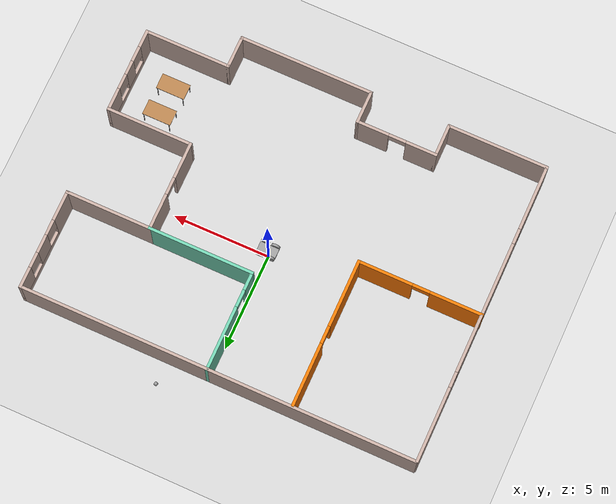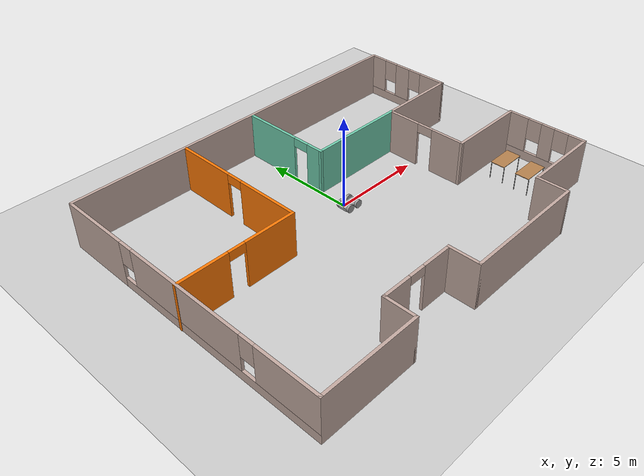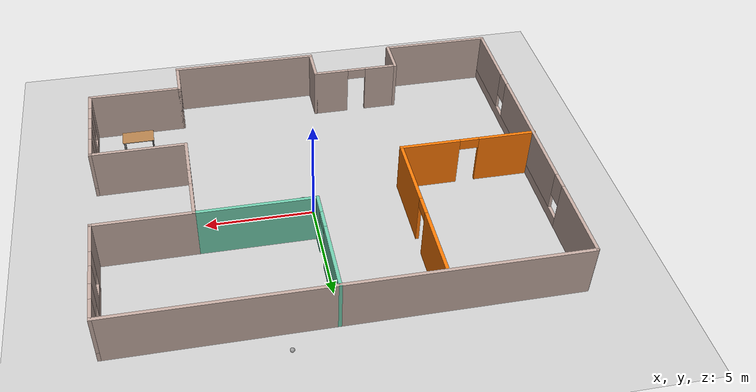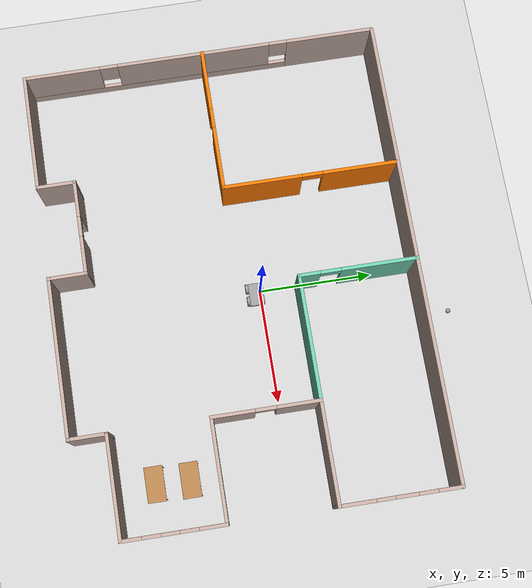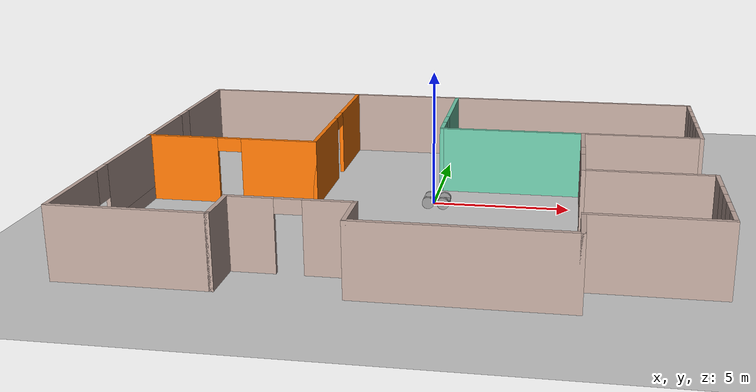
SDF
<sdf version="1.7">
 <world name="default">
  <model name="ground_plane">
   <static>1</static>
   <link name="link">
    <collision name="collision">
     <geometry><plane><normal>0 0 1</normal><size>100 100</size></plane></geometry>
     <surface>
      <contact><collide_bitmask>65535</collide_bitmask></contact>
      <friction><ode><mu>100</mu><mu2>50</mu2></ode></friction>
     </surface>
    </collision>
    <visual name="visual">
     <cast_shadows>0</cast_shadows>
     <geometry><plane><normal>0 0 1</normal><size>100 100</size></plane></geometry>
     <material>
      <script><uri>file://media/materials/scripts/gazebo.material</uri><name>Gazebo/Grey</name></script>
     </material>
    </visual>
   </link>
  </model>
  <model name="table">
   <static>1</static>
   <link name="link">
    <collision name="surface">
     <pose>0 0 1 0 -0 0</pose>
     <geometry><box><size>1.5 0.8 0.03</size></box></geometry>
     <surface><friction><ode><mu>0.6</mu><mu2>0.6</mu2></ode></friction></surface>
    </collision>
    <visual name="visual1">
     <pose>0 0 1 0 -0 0</pose>
     <geometry><box><size>1.5 0.8 0.03</size></box></geometry>
     <material>
      <script><uri>file://media/materials/scripts/gazebo.material</uri><name>Gazebo/Wood</name></script>
     </material>
    </visual>
    <collision name="front_left_leg">
     <pose>0.68 0.38 0.5 0 -0 0</pose>
     <geometry><cylinder><radius>0.02</radius><length>1</length></cylinder></geometry>
    </collision>
    <visual name="front_left_leg">
     <pose>0.68 0.38 0.5 0 -0 0</pose>
     <geometry><cylinder><radius>0.02</radius><length>1</length></cylinder></geometry>
     <material>
      <script><uri>file://media/materials/scripts/gazebo.material</uri><name>Gazebo/Grey</name></script>
     </material>
    </visual>
    <collision name="front_right_leg">
     <pose>0.68 -0.38 0.5 0 -0 0</pose>
     <geometry><cylinder><radius>0.02</radius><length>1</length></cylinder></geometry>
    </collision>
    <visual name="front_right_leg">
     <pose>0.68 -0.38 0.5 0 -0 0</pose>
     <geometry><cylinder><radius>0.02</radius><length>1</length></cylinder></geometry>
     <material>
      <script><uri>file://media/materials/scripts/gazebo.material</uri><name>Gazebo/Grey</name></script>
     </material>
    </visual>
    <collision name="back_right_leg">
     <pose>-0.68 -0.38 0.5 0 -0 0</pose>
     <geometry><cylinder><radius>0.02</radius><length>1</length></cylinder></geometry>
    </collision>
    <visual name="back_right_leg">
     <pose>-0.68 -0.38 0.5 0 -0 0</pose>
     <geometry><cylinder><radius>0.02</radius><length>1</length></cylinder></geometry>
     <material>
      <script><uri>file://media/materials/scripts/gazebo.material</uri><name>Gazebo/Grey</name></script>
     </material>
    </visual>
    <collision name="back_left_leg">
     <pose>-0.68 0.38 0.5 0 -0 0</pose>
     <geometry><cylinder><radius>0.02</radius><length>1</length></cylinder></geometry>
    </collision>
    <visual name="back_left_leg">
     <pose>-0.68 0.38 0.5 0 -0 0</pose>
     <geometry><cylinder><radius>0.02</radius><length>1</length></cylinder></geometry>
     <material>
      <script><uri>file://media/materials/scripts/gazebo.material</uri><name>Gazebo/Grey</name></script>
     </material>
    </visual>
   </link>
   <pose>7.74226 -4.23581 0 0 -0 0</pose>
  </model>
  <model name="table_0">
   <static>1</static>
   <link name="link">
    <collision name="surface">
     <pose>0 0 1 0 -0 0</pose>
     <geometry><box><size>1.5 0.8 0.03</size></box></geometry>
     <surface><friction><ode><mu>0.6</mu><mu2>0.6</mu2></ode></friction></surface>
    </collision>
    <visual name="visual1">
     <pose>0 0 1 0 -0 0</pose>
     <geometry><box><size>1.5 0.8 0.03</size></box></geometry>
     <material>
      <script><uri>file://media/materials/scripts/gazebo.material</uri><name>Gazebo/Wood</name></script>
     </material>
    </visual>
    <collision name="front_left_leg">
     <pose>0.68 0.38 0.5 0 -0 0</pose>
     <geometry><cylinder><radius>0.02</radius><length>1</length></cylinder></geometry>
    </collision>
    <visual name="front_left_leg">
     <pose>0.68 0.38 0.5 0 -0 0</pose>
     <geometry><cylinder><radius>0.02</radius><length>1</length></cylinder></geometry>
     <material>
      <script><uri>file://media/materials/scripts/gazebo.material</uri><name>Gazebo/Grey</name></script>
     </material>
    </visual>
    <collision name="front_right_leg">
     <pose>0.68 -0.38 0.5 0 -0 0</pose>
     <geometry><cylinder><radius>0.02</radius><length>1</length></cylinder></geometry>
    </collision>
    <visual name="front_right_leg">
     <pose>0.68 -0.38 0.5 0 -0 0</pose>
     <geometry><cylinder><radius>0.02</radius><length>1</length></cylinder></geometry>
     <material>
      <script><uri>file://media/materials/scripts/gazebo.material</uri><name>Gazebo/Grey</name></script>
     </material>
    </visual>
    <collision name="back_right_leg">
     <pose>-0.68 -0.38 0.5 0 -0 0</pose>
     <geometry><cylinder><radius>0.02</radius><length>1</length></cylinder></geometry>
    </collision>
    <visual name="back_right_leg">
     <pose>-0.68 -0.38 0.5 0 -0 0</pose>
     <geometry><cylinder><radius>0.02</radius><length>1</length></cylinder></geometry>
     <material>
      <script><uri>file://media/materials/scripts/gazebo.material</uri><name>Gazebo/Grey</name></script>
     </material>
    </visual>
    <collision name="back_left_leg">
     <pose>-0.68 0.38 0.5 0 -0 0</pose>
     <geometry><cylinder><radius>0.02</radius><length>1</length></cylinder></geometry>
    </collision>
    <visual name="back_left_leg">
     <pose>-0.68 0.38 0.5 0 -0 0</pose>
     <geometry><cylinder><radius>0.02</radius><length>1</length></cylinder></geometry>
     <material>
      <script><uri>file://media/materials/scripts/gazebo.material</uri><name>Gazebo/Grey</name></script>
     </material>
    </visual>
   </link>
   <pose>7.69183 -5.72226 0 0 -0 0</pose>
  </model>
  <model name="Office">
   <pose>-0.4312 -1.09674 0 0 -0 0</pose>
   <link name="Wall_12">
    <pose>-10.1892 -0.024999 0 0 0 -1.5708</pose>
    <visual name="Wall_12_Visual_0">
     <pose>-5.93121 0 1.25 0 -0 0</pose>
     <geometry><box><size>3.88759 0.15 2.5</size></box></geometry>
     <material>
      <script><uri>file://media/materials/scripts/gazebo.material</uri><name>Gazebo/Grey</name></script>
      <ambient>0.760784 0.662745 0.627451 1</ambient>
     </material>
     <meta><layer>0</layer></meta>
    </visual>
    <collision name="Wall_12_Collision_0">
     <geometry><box><size>3.88759 0.15 2.5</size></box></geometry>
     <pose>-5.93121 0 1.25 0 -0 0</pose>
    </collision>
    <visual name="Wall_12_Visual_1">
     <pose>1.94379 0 0.25 0 -0 0</pose>
     <geometry><box><size>11.8624 0.15 0.5</size></box></geometry>
     <material>
      <script><uri>file://media/materials/scripts/gazebo.material</uri><name>Gazebo/Grey</name></script>
      <ambient>0.760784 0.662745 0.627451 1</ambient>
     </material>
     <meta><layer>0</layer></meta>
    </visual>
    <collision name="Wall_12_Collision_1">
     <geometry><box><size>11.8624 0.15 0.5</size></box></geometry>
     <pose>1.94379 0 0.25 0 -0 0</pose>
    </collision>
    <visual name="Wall_12_Visual_2">
     <pose>0.229137 0 1.5 0 -0 0</pose>
     <geometry><box><size>6.8331 0.15 2</size></box></geometry>
     <material>
      <script><uri>file://media/materials/scripts/gazebo.material</uri><name>Gazebo/Grey</name></script>
      <ambient>0.760784 0.662745 0.627451 1</ambient>
     </material>
     <meta><layer>0</layer></meta>
    </visual>
    <collision name="Wall_12_Collision_2">
     <geometry><box><size>6.8331 0.15 2</size></box></geometry>
     <pose>0.229137 0 1.5 0 -0 0</pose>
    </collision>
    <visual name="Wall_12_Visual_3">
     <pose>6.16034 0 1.5 0 -0 0</pose>
     <geometry><box><size>3.42931 0.15 2</size></box></geometry>
     <material>
      <script><uri>file://media/materials/scripts/gazebo.material</uri><name>Gazebo/Grey</name></script>
      <ambient>0.760784 0.662745 0.627451 1</ambient>
     </material>
     <meta><layer>0</layer></meta>
    </visual>
    <collision name="Wall_12_Collision_3">
     <geometry><box><size>3.42931 0.15 2</size></box></geometry>
     <pose>6.16034 0 1.5 0 -0 0</pose>
    </collision>
    <visual name="Wall_12_Visual_4">
     <pose>-3.58741 0 1.9 0 -0 0</pose>
     <geometry><box><size>0.8 0.15 1.2</size></box></geometry>
     <material>
      <script><uri>file://media/materials/scripts/gazebo.material</uri><name>Gazebo/Grey</name></script>
      <ambient>0.760784 0.662745 0.627451 1</ambient>
     </material>
     <meta><layer>0</layer></meta>
    </visual>
    <collision name="Wall_12_Collision_4">
     <geometry><box><size>0.8 0.15 1.2</size></box></geometry>
     <pose>-3.58741 0 1.9 0 -0 0</pose>
    </collision>
    <visual name="Wall_12_Visual_5">
     <pose>4.04569 0 1.9 0 -0 0</pose>
     <geometry><box><size>0.8 0.15 1.2</size></box></geometry>
     <material>
      <script><uri>file://media/materials/scripts/gazebo.material</uri><name>Gazebo/Grey</name></script>
      <ambient>0.760784 0.662745 0.627451 1</ambient>
     </material>
     <meta><layer>0</layer></meta>
    </visual>
    <collision name="Wall_12_Collision_5">
     <geometry><box><size>0.8 0.15 1.2</size></box></geometry>
     <pose>4.04569 0 1.9 0 -0 0</pose>
    </collision>
   </link>
   <link name="Wall_13">
    <collision name="Wall_13_Collision">
     <geometry><box><size>5.25 0.15 2.5</size></box></geometry>
     <pose>0 0 1.25 0 -0 0</pose>
    </collision>
    <visual name="Wall_13_Visual">
     <pose>0 0 1.25 0 -0 0</pose>
     <geometry><box><size>5.25 0.15 2.5</size></box></geometry>
     <material>
      <script><uri>file://media/materials/scripts/gazebo.material</uri><name>Gazebo/Grey</name></script>
      <ambient>0.760784 0.662745 0.627451 1</ambient>
     </material>
     <meta><layer>0</layer></meta>
    </visual>
    <pose>-7.63921 -7.825 0 0 -0 0</pose>
   </link>
   <link name="Wall_14">
    <collision name="Wall_14_Collision">
     <geometry><box><size>1.75 0.15 2.5</size></box></geometry>
     <pose>0 0 1.25 0 -0 0</pose>
    </collision>
    <visual name="Wall_14_Visual">
     <pose>0 0 1.25 0 -0 0</pose>
     <geometry><box><size>1.75 0.15 2.5</size></box></geometry>
     <material>
      <script><uri>file://media/materials/scripts/gazebo.material</uri><name>Gazebo/Grey</name></script>
      <ambient>0.760784 0.662745 0.627451 1</ambient>
     </material>
     <meta><layer>0</layer></meta>
    </visual>
    <pose>-5.08921 -7.025 0 0 -0 1.5708</pose>
   </link>
   <link name="Wall_15">
    <pose>-3.03921 -6.225 0 0 -0 0</pose>
    <visual name="Wall_15_Visual_0">
     <pose>-1.30944 0 1.25 0 -0 0</pose>
     <geometry><box><size>1.63111 0.15 2.5</size></box></geometry>
     <material>
      <script><uri>file://media/materials/scripts/gazebo.material</uri><name>Gazebo/Grey</name></script>
      <ambient>0.760784 0.662745 0.627451 1</ambient>
     </material>
     <meta><layer>0</layer></meta>
    </visual>
    <collision name="Wall_15_Collision_0">
     <geometry><box><size>1.63111 0.15 2.5</size></box></geometry>
     <pose>-1.30944 0 1.25 0 -0 0</pose>
    </collision>
    <visual name="Wall_15_Visual_1">
     <pose>1.26555 0 1.25 0 -0 0</pose>
     <geometry><box><size>1.71889 0.15 2.5</size></box></geometry>
     <material>
      <script><uri>file://media/materials/scripts/gazebo.material</uri><name>Gazebo/Grey</name></script>
      <ambient>0.760784 0.662745 0.627451 1</ambient>
     </material>
     <meta><layer>0</layer></meta>
    </visual>
    <collision name="Wall_15_Collision_1">
     <geometry><box><size>1.71889 0.15 2.5</size></box></geometry>
     <pose>1.26555 0 1.25 0 -0 0</pose>
    </collision>
    <visual name="Wall_15_Visual_2">
     <pose>-0.04389 0 2.25 0 -0 0</pose>
     <geometry><box><size>0.9 0.15 0.5</size></box></geometry>
     <material>
      <script><uri>file://media/materials/scripts/gazebo.material</uri><name>Gazebo/Grey</name></script>
      <ambient>0.760784 0.662745 0.627451 1</ambient>
     </material>
     <meta><layer>0</layer></meta>
    </visual>
    <collision name="Wall_15_Collision_2">
     <geometry><box><size>0.9 0.15 0.5</size></box></geometry>
     <pose>-0.04389 0 2.25 0 -0 0</pose>
    </collision>
   </link>
   <link name="Wall_16">
    <collision name="Wall_16_Collision">
     <geometry><box><size>1.75 0.15 2.5</size></box></geometry>
     <pose>0 0 1.25 0 -0 0</pose>
    </collision>
    <visual name="Wall_16_Visual">
     <pose>0 0 1.25 0 -0 0</pose>
     <geometry><box><size>1.75 0.15 2.5</size></box></geometry>
     <material>
      <script><uri>file://media/materials/scripts/gazebo.material</uri><name>Gazebo/Grey</name></script>
      <ambient>0.760784 0.662745 0.627451 1</ambient>
     </material>
     <meta><layer>0</layer></meta>
    </visual>
    <pose>-0.98921 -7.025 0 0 0 -1.5708</pose>
   </link>
   <link name="Wall_17">
    <collision name="Wall_17_Collision">
     <geometry><box><size>7 0.15 2.5</size></box></geometry>
     <pose>0 0 1.25 0 -0 0</pose>
    </collision>
    <visual name="Wall_17_Visual">
     <pose>0 0 1.25 0 -0 0</pose>
     <geometry><box><size>7 0.15 2.5</size></box></geometry>
     <material>
      <script><uri>file://media/materials/scripts/gazebo.material</uri><name>Gazebo/Grey</name></script>
      <ambient>0.760784 0.662745 0.627451 1</ambient>
     </material>
     <meta><layer>0</layer></meta>
    </visual>
    <pose>2.43579 -7.825 0 0 -0 0</pose>
   </link>
   <link name="Wall_18">
    <collision name="Wall_18_Collision">
     <geometry><box><size>1.75 0.15 2.5</size></box></geometry>
     <pose>0 0 1.25 0 -0 0</pose>
    </collision>
    <visual name="Wall_18_Visual">
     <pose>0 0 1.25 0 -0 0</pose>
     <geometry><box><size>1.75 0.15 2.5</size></box></geometry>
     <material>
      <script><uri>file://media/materials/scripts/gazebo.material</uri><name>Gazebo/Grey</name></script>
      <ambient>0.760784 0.662745 0.627451 1</ambient>
     </material>
     <meta><layer>0</layer></meta>
    </visual>
    <pose>5.86079 -7.025 0 0 -0 1.5708</pose>
   </link>
   <link name="Wall_19">
    <collision name="Wall_19_Collision">
     <geometry><box><size>4.5 0.15 2.5</size></box></geometry>
     <pose>0 0 1.25 0 -0 0</pose>
    </collision>
    <visual name="Wall_19_Visual">
     <pose>0 0 1.25 0 -0 0</pose>
     <geometry><box><size>4.5 0.15 2.5</size></box></geometry>
     <material>
      <script><uri>file://media/materials/scripts/gazebo.material</uri><name>Gazebo/Grey</name></script>
      <ambient>0.760784 0.662745 0.627451 1</ambient>
     </material>
     <meta><layer>0</layer></meta>
    </visual>
    <pose>8.03579 -6.225 0 0 -0 0</pose>
   </link>
   <link name="Wall_20">
    <pose>10.2108 -4.05 0 0 -0 1.5708</pose>
    <visual name="Wall_20_Visual_0">
     <pose>-1.77798 0 1.25 0 -0 0</pose>
     <geometry><box><size>0.944037 0.15 2.5</size></box></geometry>
     <material>
      <script><uri>file://media/materials/scripts/gazebo.material</uri><name>Gazebo/Grey</name></script>
      <ambient>0.760784 0.662745 0.627451 1</ambient>
     </material>
     <meta><layer>0</layer></meta>
    </visual>
    <collision name="Wall_20_Collision_0">
     <geometry><box><size>0.944037 0.15 2.5</size></box></geometry>
     <pose>-1.77798 0 1.25 0 -0 0</pose>
    </collision>
    <visual name="Wall_20_Visual_1">
     <pose>0.472018 0 0.25 0 -0 0</pose>
     <geometry><box><size>3.55596 0.15 0.5</size></box></geometry>
     <material>
      <script><uri>file://media/materials/scripts/gazebo.material</uri><name>Gazebo/Grey</name></script>
      <ambient>0.760784 0.662745 0.627451 1</ambient>
     </material>
     <meta><layer>0</layer></meta>
    </visual>
    <collision name="Wall_20_Collision_1">
     <geometry><box><size>3.55596 0.15 0.5</size></box></geometry>
     <pose>0.472018 0 0.25 0 -0 0</pose>
    </collision>
    <visual name="Wall_20_Visual_2">
     <pose>-0.132031 0 1.5 0 -0 0</pose>
     <geometry><box><size>0.747865 0.15 2</size></box></geometry>
     <material>
      <script><uri>file://media/materials/scripts/gazebo.material</uri><name>Gazebo/Grey</name></script>
      <ambient>0.760784 0.662745 0.627451 1</ambient>
     </material>
     <meta><layer>0</layer></meta>
    </visual>
    <collision name="Wall_20_Collision_2">
     <geometry><box><size>0.747865 0.15 2</size></box></geometry>
     <pose>-0.132031 0 1.5 0 -0 0</pose>
    </collision>
    <visual name="Wall_20_Visual_3">
     <pose>1.64595 0 1.5 0 -0 0</pose>
     <geometry><box><size>1.2081 0.15 2</size></box></geometry>
     <material>
      <script><uri>file://media/materials/scripts/gazebo.material</uri><name>Gazebo/Grey</name></script>
      <ambient>0.760784 0.662745 0.627451 1</ambient>
     </material>
     <meta><layer>0</layer></meta>
    </visual>
    <collision name="Wall_20_Collision_3">
     <geometry><box><size>1.2081 0.15 2</size></box></geometry>
     <pose>1.64595 0 1.5 0 -0 0</pose>
    </collision>
    <visual name="Wall_20_Visual_4">
     <pose>-0.905963 0 1.9 0 -0 0</pose>
     <geometry><box><size>0.8 0.15 1.2</size></box></geometry>
     <material>
      <script><uri>file://media/materials/scripts/gazebo.material</uri><name>Gazebo/Grey</name></script>
      <ambient>0.760784 0.662745 0.627451 1</ambient>
     </material>
     <meta><layer>0</layer></meta>
    </visual>
    <collision name="Wall_20_Collision_4">
     <geometry><box><size>0.8 0.15 1.2</size></box></geometry>
     <pose>-0.905963 0 1.9 0 -0 0</pose>
    </collision>
    <visual name="Wall_20_Visual_5">
     <pose>0.641902 0 1.9 0 -0 0</pose>
     <geometry><box><size>0.8 0.15 1.2</size></box></geometry>
     <material>
      <script><uri>file://media/materials/scripts/gazebo.material</uri><name>Gazebo/Grey</name></script>
      <ambient>0.760784 0.662745 0.627451 1</ambient>
     </material>
     <meta><layer>0</layer></meta>
    </visual>
    <collision name="Wall_20_Collision_5">
     <geometry><box><size>0.8 0.15 1.2</size></box></geometry>
     <pose>0.641902 0 1.9 0 -0 0</pose>
    </collision>
   </link>
   <link name="Wall_21">
    <collision name="Wall_21_Collision">
     <geometry><box><size>4.5 0.15 2.5</size></box></geometry>
     <pose>0 0 1.25 0 -0 0</pose>
    </collision>
    <visual name="Wall_21_Visual">
     <pose>0 0 1.25 0 -0 0</pose>
     <geometry><box><size>4.5 0.15 2.5</size></box></geometry>
     <material>
      <script><uri>file://media/materials/scripts/gazebo.material</uri><name>Gazebo/Grey</name></script>
      <ambient>0.760784 0.662745 0.627451 1</ambient>
     </material>
     <meta><layer>0</layer></meta>
    </visual>
    <pose>8.03579 -1.875 0 0 -0 3.14159</pose>
   </link>
   <link name="Wall_22">
    <pose>5.86079 0.425001 0 0 -0 1.5708</pose>
    <visual name="Wall_22_Visual_0">
     <pose>-1.41181 0 1.25 0 -0 0</pose>
     <geometry><box><size>1.92639 0.15 2.5</size></box></geometry>
     <material>
      <script><uri>file://media/materials/scripts/gazebo.material</uri><name>Gazebo/Grey</name></script>
      <ambient>0.760784 0.662745 0.627451 1</ambient>
     </material>
     <meta><layer>0</layer></meta>
    </visual>
    <collision name="Wall_22_Collision_0">
     <geometry><box><size>1.92639 0.15 2.5</size></box></geometry>
     <pose>-1.41181 0 1.25 0 -0 0</pose>
    </collision>
    <visual name="Wall_22_Visual_1">
     <pose>1.41319 0 1.25 0 -0 0</pose>
     <geometry><box><size>1.92361 0.15 2.5</size></box></geometry>
     <material>
      <script><uri>file://media/materials/scripts/gazebo.material</uri><name>Gazebo/Grey</name></script>
      <ambient>0.760784 0.662745 0.627451 1</ambient>
     </material>
     <meta><layer>0</layer></meta>
    </visual>
    <collision name="Wall_22_Collision_1">
     <geometry><box><size>1.92361 0.15 2.5</size></box></geometry>
     <pose>1.41319 0 1.25 0 -0 0</pose>
    </collision>
    <visual name="Wall_22_Visual_2">
     <pose>0.001387 0 2.25 0 -0 0</pose>
     <geometry><box><size>0.9 0.15 0.5</size></box></geometry>
     <material>
      <script><uri>file://media/materials/scripts/gazebo.material</uri><name>Gazebo/Grey</name></script>
      <ambient>0.760784 0.662745 0.627451 1</ambient>
     </material>
     <meta><layer>0</layer></meta>
    </visual>
    <collision name="Wall_22_Collision_2">
     <geometry><box><size>0.9 0.15 0.5</size></box></geometry>
     <pose>0.001387 0 2.25 0 -0 0</pose>
    </collision>
   </link>
   <link name="Wall_23">
    <collision name="Wall_23_Collision">
     <geometry><box><size>4.5 0.15 2.5</size></box></geometry>
     <pose>0 0 1.25 0 -0 0</pose>
    </collision>
    <visual name="Wall_23_Visual">
     <pose>0 0 1.25 0 -0 0</pose>
     <geometry><box><size>4.5 0.15 2.5</size></box></geometry>
     <material>
      <script><uri>file://media/materials/scripts/gazebo.material</uri><name>Gazebo/Grey</name></script>
      <ambient>0.760784 0.662745 0.627451 1</ambient>
     </material>
     <meta><layer>0</layer></meta>
    </visual>
    <pose>8.03579 2.725 0 0 -0 0</pose>
   </link>
   <link name="Wall_24">
    <pose>10.2108 5.275 0 0 -0 1.5708</pose>
    <visual name="Wall_24_Visual_0">
     <pose>-1.82608 0 1.25 0 -0 0</pose>
     <geometry><box><size>1.59784 0.15 2.5</size></box></geometry>
     <material>
      <script><uri>file://media/materials/scripts/gazebo.material</uri><name>Gazebo/Grey</name></script>
      <ambient>0.760784 0.662745 0.627451 1</ambient>
     </material>
     <meta><layer>0</layer></meta>
    </visual>
    <collision name="Wall_24_Collision_0">
     <geometry><box><size>1.59784 0.15 2.5</size></box></geometry>
     <pose>-1.82608 0 1.25 0 -0 0</pose>
    </collision>
    <visual name="Wall_24_Visual_1">
     <pose>0.798919 0 0.25 0 -0 0</pose>
     <geometry><box><size>3.65216 0.15 0.5</size></box></geometry>
     <material>
      <script><uri>file://media/materials/scripts/gazebo.material</uri><name>Gazebo/Grey</name></script>
      <ambient>0.760784 0.662745 0.627451 1</ambient>
     </material>
     <meta><layer>0</layer></meta>
    </visual>
    <collision name="Wall_24_Collision_1">
     <geometry><box><size>3.65216 0.15 0.5</size></box></geometry>
     <pose>0.798919 0 0.25 0 -0 0</pose>
    </collision>
    <visual name="Wall_24_Visual_2">
     <pose>0.252308 0 1.5 0 -0 0</pose>
     <geometry><box><size>0.958938 0.15 2</size></box></geometry>
     <material>
      <script><uri>file://media/materials/scripts/gazebo.material</uri><name>Gazebo/Grey</name></script>
      <ambient>0.760784 0.662745 0.627451 1</ambient>
     </material>
     <meta><layer>0</layer></meta>
    </visual>
    <collision name="Wall_24_Collision_2">
     <geometry><box><size>0.958938 0.15 2</size></box></geometry>
     <pose>0.252308 0 1.5 0 -0 0</pose>
    </collision>
    <visual name="Wall_24_Visual_3">
     <pose>2.07839 0 1.5 0 -0 0</pose>
     <geometry><box><size>1.09322 0.15 2</size></box></geometry>
     <material>
      <script><uri>file://media/materials/scripts/gazebo.material</uri><name>Gazebo/Grey</name></script>
      <ambient>0.760784 0.662745 0.627451 1</ambient>
     </material>
     <meta><layer>0</layer></meta>
    </visual>
    <collision name="Wall_24_Collision_3">
     <geometry><box><size>1.09322 0.15 2</size></box></geometry>
     <pose>2.07839 0 1.5 0 -0 0</pose>
    </collision>
    <visual name="Wall_24_Visual_4">
     <pose>-0.627161 0 1.9 0 -0 0</pose>
     <geometry><box><size>0.8 0.15 1.2</size></box></geometry>
     <material>
      <script><uri>file://media/materials/scripts/gazebo.material</uri><name>Gazebo/Grey</name></script>
      <ambient>0.760784 0.662745 0.627451 1</ambient>
     </material>
     <meta><layer>0</layer></meta>
    </visual>
    <collision name="Wall_24_Collision_4">
     <geometry><box><size>0.8 0.15 1.2</size></box></geometry>
     <pose>-0.627161 0 1.9 0 -0 0</pose>
    </collision>
    <visual name="Wall_24_Visual_5">
     <pose>1.13178 0 1.9 0 -0 0</pose>
     <geometry><box><size>0.8 0.15 1.2</size></box></geometry>
     <material>
      <script><uri>file://media/materials/scripts/gazebo.material</uri><name>Gazebo/Grey</name></script>
      <ambient>0.760784 0.662745 0.627451 1</ambient>
     </material>
     <meta><layer>0</layer></meta>
    </visual>
    <collision name="Wall_24_Collision_5">
     <geometry><box><size>0.8 0.15 1.2</size></box></geometry>
     <pose>1.13178 0 1.9 0 -0 0</pose>
    </collision>
   </link>
   <link name="Wall_25">
    <collision name="Wall_25_Collision">
     <geometry><box><size>20.5 0.15 2.5</size></box></geometry>
     <pose>0 0 1.25 0 -0 0</pose>
    </collision>
    <visual name="Wall_25_Visual">
     <pose>0 0 1.25 0 -0 0</pose>
     <geometry><box><size>20.5 0.15 2.5</size></box></geometry>
     <material>
      <script><uri>file://media/materials/scripts/gazebo.material</uri><name>Gazebo/Grey</name></script>
      <ambient>0.760784 0.662745 0.627451 1</ambient>
     </material>
     <meta><layer>0</layer></meta>
    </visual>
    <pose>0.03579 7.825 0 0 -0 3.14159</pose>
   </link>
   <link name="Wall_27">
    <pose>-7.03579 0.139084 0 0 -0 0</pose>
    <visual name="Wall_27_Visual_0">
     <pose>-1.87618 0 1.25 0 -0 0</pose>
     <geometry><box><size>2.74763 0.15 2.5</size></box></geometry>
     <material>
      <script><uri>file://media/materials/scripts/gazebo.material</uri><name>Gazebo/Grey</name></script>
      <ambient>0.996078 0.47451 0.0196078 1</ambient>
     </material>
     <meta><layer>0</layer></meta>
    </visual>
    <collision name="Wall_27_Collision_0">
     <geometry><box><size>2.74763 0.15 2.5</size></box></geometry>
     <pose>-1.87618 0 1.25 0 -0 0</pose>
    </collision>
    <visual name="Wall_27_Visual_1">
     <pose>1.82382 0 1.25 0 -0 0</pose>
     <geometry><box><size>2.85237 0.15 2.5</size></box></geometry>
     <material>
      <script><uri>file://media/materials/scripts/gazebo.material</uri><name>Gazebo/Grey</name></script>
      <ambient>0.996078 0.47451 0.0196078 1</ambient>
     </material>
     <meta><layer>0</layer></meta>
    </visual>
    <collision name="Wall_27_Collision_1">
     <geometry><box><size>2.85237 0.15 2.5</size></box></geometry>
     <pose>1.82382 0 1.25 0 -0 0</pose>
    </collision>
    <visual name="Wall_27_Visual_2">
     <pose>-0.052368 0 2.25 0 -0 0</pose>
     <geometry><box><size>0.9 0.15 0.5</size></box></geometry>
     <material>
      <script><uri>file://media/materials/scripts/gazebo.material</uri><name>Gazebo/Grey</name></script>
      <ambient>0.996078 0.47451 0.0196078 1</ambient>
     </material>
     <meta><layer>0</layer></meta>
    </visual>
    <collision name="Wall_27_Collision_2">
     <geometry><box><size>0.9 0.15 0.5</size></box></geometry>
     <pose>-0.052368 0 2.25 0 -0 0</pose>
    </collision>
   </link>
   <link name="Wall_28">
    <pose>-3.86079 3.93908 0 0 -0 1.5708</pose>
    <visual name="Wall_28_Visual_0">
     <pose>-2.10796 0 1.25 0 -0 0</pose>
     <geometry><box><size>3.53407 0.15 2.5</size></box></geometry>
     <material>
      <script><uri>file://media/materials/scripts/gazebo.material</uri><name>Gazebo/Grey</name></script>
      <ambient>0.996078 0.47451 0.0196078 1</ambient>
     </material>
     <meta><layer>0</layer></meta>
    </visual>
    <collision name="Wall_28_Collision_0">
     <geometry><box><size>3.53407 0.15 2.5</size></box></geometry>
     <pose>-2.10796 0 1.25 0 -0 0</pose>
    </collision>
    <visual name="Wall_28_Visual_1">
     <pose>2.21704 0 1.25 0 -0 0</pose>
     <geometry><box><size>3.31593 0.15 2.5</size></box></geometry>
     <material>
      <script><uri>file://media/materials/scripts/gazebo.material</uri><name>Gazebo/Grey</name></script>
      <ambient>0.996078 0.47451 0.0196078 1</ambient>
     </material>
     <meta><layer>0</layer></meta>
    </visual>
    <collision name="Wall_28_Collision_1">
     <geometry><box><size>3.31593 0.15 2.5</size></box></geometry>
     <pose>2.21704 0 1.25 0 -0 0</pose>
    </collision>
    <visual name="Wall_28_Visual_2">
     <pose>0.109073 0 2.25 0 -0 0</pose>
     <geometry><box><size>0.9 0.15 0.5</size></box></geometry>
     <material>
      <script><uri>file://media/materials/scripts/gazebo.material</uri><name>Gazebo/Grey</name></script>
      <ambient>0.996078 0.47451 0.0196078 1</ambient>
     </material>
     <meta><layer>0</layer></meta>
    </visual>
    <collision name="Wall_28_Collision_2">
     <geometry><box><size>0.9 0.15 0.5</size></box></geometry>
     <pose>0.109073 0 2.25 0 -0 0</pose>
    </collision>
   </link>
   <link name="Wall_30">
    <collision name="Wall_30_Collision">
     <geometry><box><size>5.5 0.15 2.5</size></box></geometry>
     <pose>0 0 1.25 0 -0 0</pose>
    </collision>
    <visual name="Wall_30_Visual">
     <pose>0 0 1.25 0 -0 0</pose>
     <geometry><box><size>5.5 0.15 2.5</size></box></geometry>
     <material>
      <script><uri>file://media/materials/scripts/gazebo.material</uri><name>Gazebo/Grey</name></script>
      <ambient>0.435294 0.796078 0.67451 1</ambient>
     </material>
     <meta><layer>0</layer></meta>
    </visual>
    <pose>3.18579 2.725 0 0 -0 3.14159</pose>
   </link>
   <link name="Wall_31">
    <pose>0.51079 5.275 0 0 -0 1.5708</pose>
    <visual name="Wall_31_Visual_0">
     <pose>-2.13099 0 1.25 0 -0 0</pose>
     <geometry><box><size>0.988014 0.15 2.5</size></box></geometry>
     <material>
      <script><uri>file://media/materials/scripts/gazebo.material</uri><name>Gazebo/Grey</name></script>
      <ambient>0.435294 0.796078 0.67451 1</ambient>
     </material>
     <meta><layer>0</layer></meta>
    </visual>
    <collision name="Wall_31_Collision_0">
     <geometry><box><size>0.988014 0.15 2.5</size></box></geometry>
     <pose>-2.13099 0 1.25 0 -0 0</pose>
    </collision>
    <visual name="Wall_31_Visual_1">
     <pose>0.944007 0 1.25 0 -0 0</pose>
     <geometry><box><size>3.36199 0.15 2.5</size></box></geometry>
     <material>
      <script><uri>file://media/materials/scripts/gazebo.material</uri><name>Gazebo/Grey</name></script>
      <ambient>0.435294 0.796078 0.67451 1</ambient>
     </material>
     <meta><layer>0</layer></meta>
    </visual>
    <collision name="Wall_31_Collision_1">
     <geometry><box><size>3.36199 0.15 2.5</size></box></geometry>
     <pose>0.944007 0 1.25 0 -0 0</pose>
    </collision>
    <visual name="Wall_31_Visual_2">
     <pose>-1.18699 0 2.25 0 -0 0</pose>
     <geometry><box><size>0.9 0.15 0.5</size></box></geometry>
     <material>
      <script><uri>file://media/materials/scripts/gazebo.material</uri><name>Gazebo/Grey</name></script>
      <ambient>0.435294 0.796078 0.67451 1</ambient>
     </material>
     <meta><layer>0</layer></meta>
    </visual>
    <collision name="Wall_31_Collision_2">
     <geometry><box><size>0.9 0.15 0.5</size></box></geometry>
     <pose>-1.18699 0 2.25 0 -0 0</pose>
    </collision>
   </link>
   <static>1</static>
  </model>
  <model name="wheeled_robot">
   <link name="link_0">
    <pose>-0 -0 -0.025902 0 -0 0</pose>
    <inertial>
     <mass>0.0772446</mass>
     <inertia>
      <ixx>0.00185631</ixx>
      <ixy>0</ixy>
      <ixz>0</ixz>
      <iyy>0.00652801</iyy>
      <iyz>0</iyz>
      <izz>0.00809275</izz>
     </inertia>
    </inertial>
    <visual name="visual">
     <geometry><box><size>0.995732 0.515491 0.150489</size></box></geometry>
     <material>
      <lighting>1</lighting>
      <script><uri>file://media/materials/scripts/gazebo.material</uri><name>Gazebo/Grey</name></script>
      <shader type="pixel"/>
      <ambient>0.3 0.3 0.3 1</ambient>
      <diffuse>0.7 0.7 0.7 1</diffuse>
      <specular>0.01 0.01 0.01 1</specular>
      <emissive>0 0 0 1</emissive>
     </material>
    </visual>
    <collision name="collision">
     <geometry><box><size>0.995732 0.515491 0.150489</size></box></geometry>
     <surface>
      <friction>
       <ode><mu>1</mu><mu2>1</mu2><fdir1>0 0 0</fdir1><slip1>0</slip1><slip2>0</slip2></ode>
       <torsional>
        <coefficient>1</coefficient>
        <patch_radius>0</patch_radius>
        <surface_radius>0</surface_radius>
        <use_patch_radius>1</use_patch_radius>
        <ode><slip>0</slip></ode>
       </torsional>
      </friction>
      <bounce><restitution_coefficient>0</restitution_coefficient><threshold>1e+06</threshold></bounce>
      <contact>
       <collide_without_contact>0</collide_without_contact>
       <collide_without_contact_bitmask>1</collide_without_contact_bitmask>
       <collide_bitmask>1</collide_bitmask>
       <ode>
        <soft_cfm>0</soft_cfm>
        <soft_erp>0.2</soft_erp>
        <kp>1e+13</kp>
        <kd>1</kd>
        <max_vel>0.01</max_vel>
        <min_depth>0</min_depth>
       </ode>
       <bullet>
        <split_impulse>1</split_impulse>
        <split_impulse_penetration_threshold>-0.01</split_impulse_penetration_threshold>
        <soft_cfm>0</soft_cfm>
        <soft_erp>0.2</soft_erp>
        <kp>1e+13</kp>
        <kd>1</kd>
       </bullet>
      </contact>
     </surface>
    </collision>
   </link>
   <link name="link_1">
    <pose>0.276969 -0.320255 0.006476 1.5708 -0 0</pose>
    <inertial>
     <mass>0.0244029</mass>
     <inertia>
      <ixx>0.00032947</ixx>
      <ixy>0</ixy>
      <ixz>0</ixz>
      <iyy>0.00032947</iyy>
      <iyz>0</iyz>
      <izz>0.00059538</izz>
     </inertia>
    </inertial>
    <visual name="visual">
     <geometry><cylinder><radius>0.220898</radius><length>0.125017</length></cylinder></geometry>
     <material>
      <lighting>1</lighting>
      <script><uri>file://media/materials/scripts/gazebo.material</uri><name>Gazebo/Grey</name></script>
      <shader type="pixel"><normal_map>__default__</normal_map></shader>
      <ambient>0.3 0.3 0.3 1</ambient>
      <diffuse>0.7 0.7 0.7 1</diffuse>
      <specular>0.01 0.01 0.01 1</specular>
      <emissive>0 0 0 1</emissive>
     </material>
    </visual>
    <collision name="collision">
     <geometry><cylinder><radius>0.220898</radius><length>0.125017</length></cylinder></geometry>
     <surface>
      <friction>
       <ode><mu>1</mu><mu2>1</mu2><fdir1>0 0 0</fdir1><slip1>0</slip1><slip2>0</slip2></ode>
       <torsional>
        <coefficient>1</coefficient>
        <patch_radius>0</patch_radius>
        <surface_radius>0</surface_radius>
        <use_patch_radius>1</use_patch_radius>
        <ode><slip>0</slip></ode>
       </torsional>
      </friction>
      <bounce><restitution_coefficient>0</restitution_coefficient><threshold>1e+06</threshold></bounce>
      <contact>
       <collide_without_contact>0</collide_without_contact>
       <collide_without_contact_bitmask>1</collide_without_contact_bitmask>
       <collide_bitmask>1</collide_bitmask>
       <ode>
        <soft_cfm>0</soft_cfm>
        <soft_erp>0.2</soft_erp>
        <kp>1e+13</kp>
        <kd>1</kd>
        <max_vel>0.01</max_vel>
        <min_depth>0</min_depth>
       </ode>
       <bullet>
        <split_impulse>1</split_impulse>
        <split_impulse_penetration_threshold>-0.01</split_impulse_penetration_threshold>
        <soft_cfm>0</soft_cfm>
        <soft_erp>0.2</soft_erp>
        <kp>1e+13</kp>
        <kd>1</kd>
       </bullet>
      </contact>
     </surface>
    </collision>
   </link>
   <link name="link_1_clone">
    <pose>-0.276969 -0.320255 0.006475 1.5708 -0 0</pose>
    <inertial>
     <mass>0.0244029</mass>
     <inertia>
      <ixx>0.00032947</ixx>
      <ixy>0</ixy>
      <ixz>0</ixz>
      <iyy>0.00032947</iyy>
      <iyz>0</iyz>
      <izz>0.00059538</izz>
     </inertia>
    </inertial>
    <visual name="visual">
     <geometry><cylinder><radius>0.220898</radius><length>0.125017</length></cylinder></geometry>
     <material>
      <lighting>1</lighting>
      <script><uri>file://media/materials/scripts/gazebo.material</uri><name>Gazebo/Grey</name></script>
      <shader type="pixel"><normal_map>__default__</normal_map></shader>
      <ambient>0.3 0.3 0.3 1</ambient>
      <diffuse>0.7 0.7 0.7 1</diffuse>
      <specular>0.01 0.01 0.01 1</specular>
      <emissive>0 0 0 1</emissive>
     </material>
    </visual>
    <collision name="collision">
     <geometry><cylinder><radius>0.220898</radius><length>0.125017</length></cylinder></geometry>
     <surface>
      <friction>
       <ode><mu>1</mu><mu2>1</mu2><fdir1>0 0 0</fdir1><slip1>0</slip1><slip2>0</slip2></ode>
       <torsional>
        <coefficient>1</coefficient>
        <patch_radius>0</patch_radius>
        <surface_radius>0</surface_radius>
        <use_patch_radius>1</use_patch_radius>
        <ode><slip>0</slip></ode>
       </torsional>
      </friction>
      <bounce><restitution_coefficient>0</restitution_coefficient><threshold>1e+06</threshold></bounce>
      <contact>
       <collide_without_contact>0</collide_without_contact>
       <collide_without_contact_bitmask>1</collide_without_contact_bitmask>
       <collide_bitmask>1</collide_bitmask>
       <ode>
        <soft_cfm>0</soft_cfm>
        <soft_erp>0.2</soft_erp>
        <kp>1e+13</kp>
        <kd>1</kd>
        <max_vel>0.01</max_vel>
        <min_depth>0</min_depth>
       </ode>
       <bullet>
        <split_impulse>1</split_impulse>
        <split_impulse_penetration_threshold>-0.01</split_impulse_penetration_threshold>
        <soft_cfm>0</soft_cfm>
        <soft_erp>0.2</soft_erp>
        <kp>1e+13</kp>
        <kd>1</kd>
       </bullet>
      </contact>
     </surface>
    </collision>
   </link>
   <link name="link_1_clone_0">
    <pose>0.276969 0.320255 0.006476 1.5708 -0 0</pose>
    <inertial>
     <mass>0.0244029</mass>
     <inertia>
      <ixx>0.00032947</ixx>
      <ixy>0</ixy>
      <ixz>0</ixz>
      <iyy>0.00032947</iyy>
      <iyz>0</iyz>
      <izz>0.00059538</izz>
     </inertia>
    </inertial>
    <visual name="visual">
     <geometry><cylinder><radius>0.220898</radius><length>0.125017</length></cylinder></geometry>
     <material>
      <lighting>1</lighting>
      <script><uri>file://media/materials/scripts/gazebo.material</uri><name>Gazebo/Grey</name></script>
      <shader type="pixel"><normal_map>__default__</normal_map></shader>
      <ambient>0.3 0.3 0.3 1</ambient>
      <diffuse>0.7 0.7 0.7 1</diffuse>
      <specular>0.01 0.01 0.01 1</specular>
      <emissive>0 0 0 1</emissive>
     </material>
    </visual>
    <collision name="collision">
     <geometry><cylinder><radius>0.220898</radius><length>0.125017</length></cylinder></geometry>
     <surface>
      <friction>
       <ode><mu>1</mu><mu2>1</mu2><fdir1>0 0 0</fdir1><slip1>0</slip1><slip2>0</slip2></ode>
       <torsional>
        <coefficient>1</coefficient>
        <patch_radius>0</patch_radius>
        <surface_radius>0</surface_radius>
        <use_patch_radius>1</use_patch_radius>
        <ode><slip>0</slip></ode>
       </torsional>
      </friction>
      <bounce><restitution_coefficient>0</restitution_coefficient><threshold>1e+06</threshold></bounce>
      <contact>
       <collide_without_contact>0</collide_without_contact>
       <collide_without_contact_bitmask>1</collide_without_contact_bitmask>
       <collide_bitmask>1</collide_bitmask>
       <ode>
        <soft_cfm>0</soft_cfm>
        <soft_erp>0.2</soft_erp>
        <kp>1e+13</kp>
        <kd>1</kd>
        <max_vel>0.01</max_vel>
        <min_depth>0</min_depth>
       </ode>
       <bullet>
        <split_impulse>1</split_impulse>
        <split_impulse_penetration_threshold>-0.01</split_impulse_penetration_threshold>
        <soft_cfm>0</soft_cfm>
        <soft_erp>0.2</soft_erp>
        <kp>1e+13</kp>
        <kd>1</kd>
       </bullet>
      </contact>
     </surface>
    </collision>
   </link>
   <link name="link_1_clone_1">
    <pose>-0.276969 0.320255 0.006476 1.5708 -0 0</pose>
    <inertial>
     <mass>0.0244029</mass>
     <inertia>
      <ixx>0.00032947</ixx>
      <ixy>0</ixy>
      <ixz>0</ixz>
      <iyy>0.00032947</iyy>
      <iyz>0</iyz>
      <izz>0.00059538</izz>
     </inertia>
    </inertial>
    <visual name="visual">
     <geometry><cylinder><radius>0.220898</radius><length>0.125017</length></cylinder></geometry>
     <material>
      <lighting>1</lighting>
      <script><uri>file://media/materials/scripts/gazebo.material</uri><name>Gazebo/Grey</name></script>
      <shader type="pixel"><normal_map>__default__</normal_map></shader>
      <ambient>0.3 0.3 0.3 1</ambient>
      <diffuse>0.7 0.7 0.7 1</diffuse>
      <specular>0.01 0.01 0.01 1</specular>
      <emissive>0 0 0 1</emissive>
     </material>
    </visual>
    <collision name="collision">
     <geometry><cylinder><radius>0.220898</radius><length>0.125017</length></cylinder></geometry>
     <surface>
      <friction>
       <ode><mu>1</mu><mu2>1</mu2><fdir1>0 0 0</fdir1><slip1>0</slip1><slip2>0</slip2></ode>
       <torsional>
        <coefficient>1</coefficient>
        <patch_radius>0</patch_radius>
        <surface_radius>0</surface_radius>
        <use_patch_radius>1</use_patch_radius>
        <ode><slip>0</slip></ode>
       </torsional>
      </friction>
      <bounce><restitution_coefficient>0</restitution_coefficient><threshold>1e+06</threshold></bounce>
      <contact>
       <collide_without_contact>0</collide_without_contact>
       <collide_without_contact_bitmask>1</collide_without_contact_bitmask>
       <collide_bitmask>1</collide_bitmask>
       <ode>
        <soft_cfm>0</soft_cfm>
        <soft_erp>0.2</soft_erp>
        <kp>1e+13</kp>
        <kd>1</kd>
        <max_vel>0.01</max_vel>
        <min_depth>0</min_depth>
       </ode>
       <bullet>
        <split_impulse>1</split_impulse>
        <split_impulse_penetration_threshold>-0.01</split_impulse_penetration_threshold>
        <soft_cfm>0</soft_cfm>
        <soft_erp>0.2</soft_erp>
        <kp>1e+13</kp>
        <kd>1</kd>
       </bullet>
      </contact>
     </surface>
    </collision>
   </link>
   <joint name="link_0_JOINT_0" type="revolute">
    <parent>link_0</parent>
    <child>link_1</child>
    <axis>
     <xyz>0 0 1</xyz>
     <limit>
      <lower>-1.79769e+308</lower>
      <upper>1.79769e+308</upper>
      <effort>-1</effort>
      <velocity>-1</velocity>
     </limit>
     <dynamics>
      <spring_reference>0</spring_reference>
      <spring_stiffness>0</spring_stiffness>
      <damping>0</damping>
     </dynamics>
    </axis>
    <physics>
     <ode><limit><cfm>0</cfm><erp>0.2</erp></limit><suspension><cfm>0</cfm><erp>0.2</erp></suspension></ode>
    </physics>
   </joint>
   <joint name="link_0_JOINT_1" type="revolute">
    <parent>link_0</parent>
    <child>link_1_clone</child>
    <axis>
     <xyz>0 0 1</xyz>
     <limit>
      <lower>-1.79769e+308</lower>
      <upper>1.79769e+308</upper>
      <effort>-1</effort>
      <velocity>-1</velocity>
     </limit>
     <dynamics>
      <spring_reference>0</spring_reference>
      <spring_stiffness>0</spring_stiffness>
      <damping>0</damping>
     </dynamics>
    </axis>
    <physics>
     <ode><limit><cfm>0</cfm><erp>0.2</erp></limit><suspension><cfm>0</cfm><erp>0.2</erp></suspension></ode>
    </physics>
   </joint>
   <joint name="link_0_JOINT_2" type="revolute">
    <parent>link_0</parent>
    <child>link_1_clone_0</child>
    <axis>
     <xyz>0 0 1</xyz>
     <limit>
      <lower>-1.79769e+308</lower>
      <upper>1.79769e+308</upper>
      <effort>-1</effort>
      <velocity>-1</velocity>
     </limit>
     <dynamics>
      <spring_reference>0</spring_reference>
      <spring_stiffness>0</spring_stiffness>
      <damping>0</damping>
     </dynamics>
    </axis>
    <physics>
     <ode><limit><cfm>0</cfm><erp>0.2</erp></limit><suspension><cfm>0</cfm><erp>0.2</erp></suspension></ode>
    </physics>
   </joint>
   <joint name="link_0_JOINT_3" type="revolute">
    <parent>link_0</parent>
    <child>link_1_clone_1</child>
    <axis>
     <xyz>0 0 1</xyz>
     <limit>
      <lower>-1.79769e+308</lower>
      <upper>1.79769e+308</upper>
      <effort>-1</effort>
      <velocity>-1</velocity>
     </limit>
     <dynamics>
      <spring_reference>0</spring_reference>
      <spring_stiffness>0</spring_stiffness>
      <damping>0</damping>
     </dynamics>
    </axis>
    <physics>
     <ode><limit><cfm>0</cfm><erp>0.2</erp></limit><suspension><cfm>0</cfm><erp>0.2</erp></suspension></ode>
    </physics>
   </joint>
   <static>0</static>
   <pose>0.135686 -0.253327 0.214422 -1e-06 1e-06 -0.002512</pose>
  </model>
  <model name="my_ball">
   <link name="link_0">
    <inertial>
     <mass>1</mass>
     <inertia><ixx>0.1</ixx><ixy>0</ixy><ixz>0</ixz><iyy>0.1</iyy><iyz>0</iyz><izz>0.1</izz></inertia>
    </inertial>
    <visual name="visual">
     <geometry><sphere><radius>0.1</radius></sphere></geometry>
     <material>
      <lighting>1</lighting>
      <script><uri>file://media/materials/scripts/gazebo.material</uri><name>Gazebo/Grey</name></script>
      <shader type="pixel"><normal_map>__default__</normal_map></shader>
      <ambient>1 1 1 1</ambient>
      <diffuse>1 1 1 1</diffuse>
      <specular>1 1 1 1</specular>
      <emissive>1 1 1 1</emissive>
     </material>
    </visual>
    <collision name="collision">
     <geometry><sphere><radius>0.1</radius></sphere></geometry>
     <surface>
      <friction>
       <ode><mu>1</mu><mu2>1</mu2><fdir1>0 0 0</fdir1><slip1>0</slip1><slip2>0</slip2></ode>
       <torsional>
        <coefficient>1</coefficient>
        <patch_radius>0</patch_radius>
        <surface_radius>0</surface_radius>
        <use_patch_radius>1</use_patch_radius>
        <ode><slip>0</slip></ode>
       </torsional>
      </friction>
      <bounce><restitution_coefficient>0</restitution_coefficient><threshold>1e+06</threshold></bounce>
      <contact>
       <collide_without_contact>0</collide_without_contact>
       <collide_without_contact_bitmask>1</collide_without_contact_bitmask>
       <collide_bitmask>1</collide_bitmask>
       <ode>
        <soft_cfm>0</soft_cfm>
        <soft_erp>0.2</soft_erp>
        <kp>1e+13</kp>
        <kd>1</kd>
        <max_vel>0.01</max_vel>
        <min_depth>0</min_depth>
       </ode>
       <bullet>
        <split_impulse>1</split_impulse>
        <split_impulse_penetration_threshold>-0.01</split_impulse_penetration_threshold>
        <soft_cfm>0</soft_cfm>
        <soft_erp>0.2</soft_erp>
        <kp>1e+13</kp>
        <kd>1</kd>
       </bullet>
      </contact>
     </surface>
    </collision>
   </link>
   <static>0</static>
   <pose>2.22839 8.01114 0.5 0 -0 0</pose>
  </model>
 </world>
</sdf>
